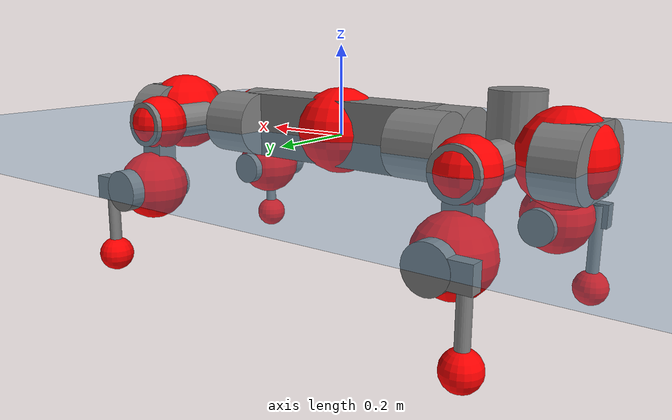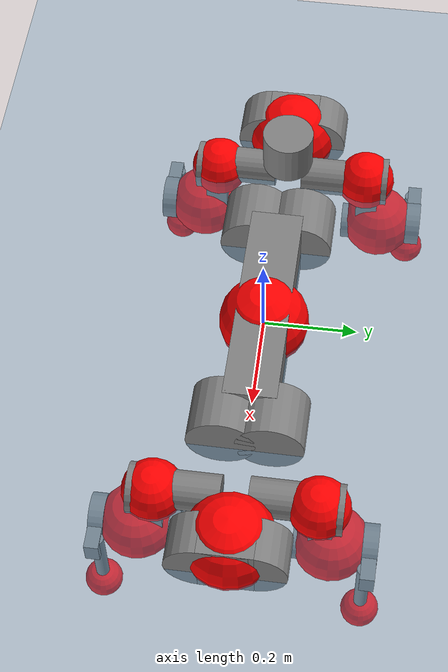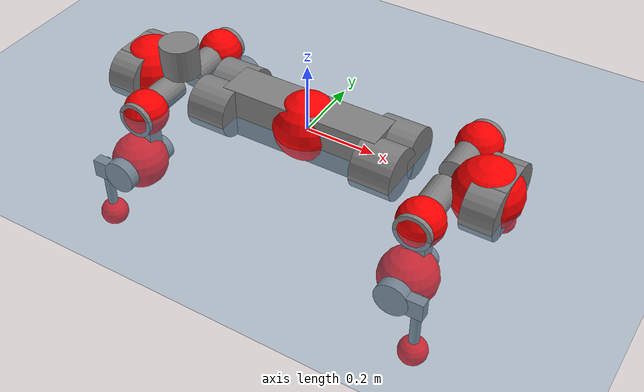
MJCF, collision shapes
<mujoco model="anymal_c">
  <compiler angle="radian" assetdir="assets" balanceinertia="true" inertiafromgeom="false"/>

  <option timestep="0.005" density="1.2" viscosity="2e-05"/>

  <size nkey="1"/>

  <visual>
    <quality shadowsize="8192"/>
    <map shadowclip="0.5"/>
  </visual>

  <default>
    <default class="/">
      <material specular="0" shininess="0.25"/>
      <geom contype="0" conaffinity="0" group="1" solref="-1000 -80"/>
      <site size="0.01 0.005 0.005" group="5"/>
      <general forcelimited="true" forcerange="-80 80" biastype="affine" gainprm="80" biasprm="0 -80 -2"/>
      <default class="anymal_c">
        <joint armature="0.01" damping="0.01" frictionloss="0.1"/>
        <default class="visual">
          <geom type="mesh" group="2"/>
          <default class="visual_zflip"/>
        </default>
        <default class="collision">
          <geom type="cylinder" group="3"/>
          <default class="foot">
            <geom size="0.03 0 0" type="sphere" condim="6" priority="1" friction="0.8 0.02 0.01" solimp="0.015 1 0.03"/>
          </default>
        </default>
      </default>
      <default class="reward_collision_sphere">
        <geom group="5" rgba="1 0 0 1"/>
      </default>
    </default>
  </default>

  <asset>
    <texture type="skybox" colorspace="auto" name="//unnamed_texture_0" builtin="gradient" rgb1="0.95 0.95 0.95" rgb2="0.95 0.95 0.95" width="100" height="600"/>
    <texture type="2d" colorspace="auto" name="texplane" builtin="checker" rgb1="0.345 0.575 0.748" rgb2="0.345 0.575 0.748" markrgb="1 1 1" width="512" height="512"/>
    <texture type="2d" colorspace="linear" name="base" file="base.png"/>
    <texture type="2d" colorspace="linear" name="top_shell" file="top_shell.png"/>
    <texture type="2d" colorspace="linear" name="bottom_shell" file="bottom_shell.png"/>
    <texture type="2d" colorspace="linear" name="remote" file="remote.png"/>
    <texture type="2d" colorspace="linear" name="hatch" file="hatch.png"/>
    <texture type="2d" colorspace="linear" name="handle" file="handle.png"/>
    <texture type="2d" colorspace="linear" name="face" file="face.png"/>
    <texture type="2d" colorspace="linear" name="battery" file="battery.png"/>
    <texture type="2d" colorspace="linear" name="lidar_cage" file="lidar_cage.png"/>
    <texture type="2d" colorspace="linear" name="depth_camera" file="depth_camera.png"/>
    <texture type="2d" colorspace="linear" name="wide_angle_camera" file="wide_angle_camera.png"/>
    <texture type="2d" colorspace="linear" name="lidar" file="lidar.png"/>
    <texture type="2d" colorspace="linear" name="drive" file="drive.png"/>
    <texture type="2d" colorspace="linear" name="hip_l" file="hip_l.png"/>
    <texture type="2d" colorspace="linear" name="shank_l" file="shank_l.png"/>
    <texture type="2d" colorspace="linear" name="foot" file="foot.png"/>
    <texture type="2d" colorspace="linear" name="thigh" file="thigh.png"/>
    <texture type="2d" colorspace="linear" name="shank_r" file="shank_r.png"/>
    <texture type="2d" colorspace="linear" name="hip_r" file="hip_r.png"/>
    <material name="MatPlane" class="/" texture="texplane" texuniform="true" texrepeat="2 2" specular="0.9" shininess="0.5"/>
    <material name="black_plastic" class="/" rgba="0.007 0.007 0.007 1"/>
    <material name="green" class="/" rgba="0.052 0.178 0.033 1"/>
    <material name="red" class="/" rgba="0.178 0.006 0.005 1"/>
    <material name="yellow" class="/" rgba="0.178 0.119 0.006 1"/>
    <material name="lwl" class="/" rgba="0.8 0.8 0.8 1"/>
    <material name="base" class="/" texture="base"/>
    <material name="top_shell" class="/" texture="top_shell"/>
    <material name="bottom_shell" class="/" texture="bottom_shell"/>
    <material name="hip_l" class="/" texture="hip_l"/>
    <material name="thigh" class="/" texture="thigh"/>
    <material name="shank_l" class="/" texture="shank_l"/>
    <material name="foot" class="/" texture="foot"/>
    <material name="hip_r" class="/" texture="hip_r"/>
    <material name="shank" class="/" texture="shank_r"/>
    <material name="hatch" class="/" texture="hatch"/>
    <material name="remote" class="/" texture="remote"/>
    <material name="handle" class="/" texture="handle"/>
    <material name="face" class="/" texture="face"/>
    <material name="depth_camera" class="/" texture="depth_camera"/>
    <material name="wide_angle_camera" class="/" texture="wide_angle_camera"/>
    <material name="battery" class="/" texture="battery"/>
    <material name="lidar_cage" class="/" texture="lidar_cage"/>
    <material name="lidar" class="/" texture="lidar"/>
    <material name="drive" class="/" texture="drive"/>
    <mesh name="base_0" class="/" file="base_0.obj"/>
    <mesh name="base_1" class="/" file="base_1.obj"/>
    <mesh name="base_2" class="/" file="base_2.obj"/>
    <mesh name="base_3" class="/" file="base_3.obj"/>
    <mesh name="base_4" class="/" file="base_4.obj"/>
    <mesh name="base_5" class="/" file="base_5.obj"/>
    <mesh name="top_shell" class="/" file="top_shell.obj"/>
    <mesh name="bottom_shell" class="/" file="bottom_shell.obj"/>
    <mesh name="remote" class="/" file="remote.obj"/>
    <mesh name="handle" class="/" file="handle.obj"/>
    <mesh name="face" class="/" file="face.obj"/>
    <mesh name="wide_angle_camera" class="/" file="wide_angle_camera.obj"/>
    <mesh name="depth_camera" class="/" file="depth_camera.obj"/>
    <mesh name="battery" class="/" file="battery.obj"/>
    <mesh name="lidar_cage" class="/" file="lidar_cage.obj"/>
    <mesh name="lidar" class="/" file="lidar.obj"/>
    <mesh name="drive" class="/" file="drive.obj"/>
    <mesh name="hip_l" class="/" file="hip_l.obj"/>
    <mesh name="thigh" class="/" file="thigh.obj"/>
    <mesh name="shank_l" class="/" file="shank_l.obj"/>
    <mesh name="foot" class="/" file="foot.obj"/>
    <mesh name="hip_r" class="/" file="hip_r.obj"/>
    <mesh name="hatch" class="/" file="hatch.obj"/>
    <mesh name="shank_r" class="/" file="shank_r.obj"/>
  </asset>

  <worldbody>
    <geom name="floor" class="/" size="100 100 0.125" type="plane" group="0" material="MatPlane"/>
    <light name="toplight_shadow" class="/" pos="0 0 5" dir="0.0990148 0.0990148 -0.990148" type="directional" ambient="0.04 0.04 0.04" diffuse="0.55 0.55 0.55" specular="0.12 0.12 0.12"/>
    <light name="toplight_fill" class="/" pos="0 0 5" dir="0.0990148 0.0990148 -0.990148" type="directional" castshadow="false" ambient="0.04 0.04 0.04" diffuse="0.3 0.3 0.3" specular="0.08 0.08 0.08"/>
    <body name="trunk" childclass="anymal_c" pos="0.000202839 0.00142017 0.0117328" quat="0.999986 0.000744377 -0.00396311 -0.00353049">
      <inertial pos="0.00352211 -0.00892548 0.0251555" quat="0.476924 0.542134 0.497188 0.481081" mass="9.22519" diaginertia="1.1252 0.100276 0.00826053"/>
      <joint name="//unnamed_joint_0" type="free" armature="0" damping="0" frictionloss="0"/>
      <geom name="//unnamed_geom_1" class="visual" material="green" mesh="base_0"/>
      <geom name="//unnamed_geom_2" class="visual" material="yellow" mesh="base_1"/>
      <geom name="//unnamed_geom_3" class="visual" material="red" mesh="base_2"/>
      <geom name="//unnamed_geom_4" class="visual" material="black_plastic" mesh="base_3"/>
      <geom name="//unnamed_geom_5" class="visual" material="lwl" mesh="base_4"/>
      <geom name="//unnamed_geom_6" class="visual" material="base" mesh="base_5"/>
      <geom name="trunk_1" class="collision" size="0.233074 0.0562591 0.0723332" type="box"/>
      <geom name="trunk_2" class="collision" size="0.0723332 0.0582684" pos="0.252133 0.0501147 0" quat="0.707107 0 0.707107 0"/>
      <geom name="trunk_3" class="collision" size="0.0723332 0.0582684" pos="-0.252133 0.0501147 0" quat="0.707107 0 0.707107 0"/>
      <geom name="trunk_4" class="collision" size="0.0723332 0.0582684" pos="0.252133 -0.0501147 0" quat="0.707107 0 0.707107 0"/>
      <geom name="trunk_5" class="collision" size="0.0723332 0.0582684" pos="-0.252133 -0.0501147 0" quat="0.707107 0 0.707107 0"/>
      <geom name="//unnamed_geom_12" class="visual" material="top_shell" mesh="top_shell"/>
      <geom name="//unnamed_geom_13" class="visual" material="bottom_shell" mesh="bottom_shell"/>
      <geom name="//unnamed_geom_14" class="visual" material="remote" mesh="remote"/>
      <geom name="//unnamed_geom_15" class="visual" material="handle" mesh="handle"/>
      <geom name="//unnamed_geom_16" class="visual" pos="0.480501 0 0" quat="1 0 0 0" material="face" mesh="face"/>
      <geom name="trunk_6" class="collision" size="0.0442036 0.0562591 0.0723332" pos="0.544259 0 0" type="box"/>
      <geom name="//unnamed_geom_18" class="collision" size="0.0723332 0.0442036" pos="0.544259 0.0501147 0" quat="0.707107 0 0.707107 0"/>
      <geom name="//unnamed_geom_19" class="collision" size="0.0723332 0.0442036" pos="0.544259 -0.0501147 0" quat="0.707107 0 0.707107 0"/>
      <geom name="//unnamed_geom_20" class="visual" pos="0.535133 0 -0.0109128" quat="0.965926 0 0.258819 0" material="depth_camera" mesh="depth_camera"/>
      <geom name="//unnamed_geom_21" class="visual" pos="0.594685 0 0.00802319" material="wide_angle_camera" mesh="wide_angle_camera"/>
      <geom name="//unnamed_geom_22" class="visual_zflip" pos="-0.480501 0 0" quat="0 0 0 1" material="face" mesh="face"/>
      <geom name="trunk_7" class="collision" size="0.0442036 0.0562591 0.0723332" pos="-0.544259 0 0" quat="0 0 0 1" type="box"/>
      <geom name="//unnamed_geom_24" class="collision" size="0.0723332 0.0442036" pos="-0.544259 -0.0501147 0" quat="0 -0.707107 0 0.707107"/>
      <geom name="//unnamed_geom_25" class="collision" size="0.0723332 0.0442036" pos="-0.544259 0.0501147 0" quat="0 -0.707107 0 0.707107"/>
      <geom name="//unnamed_geom_26" class="visual" pos="-0.535133 0 -0.0109128" quat="0 -0.258819 0 0.965926" material="depth_camera" mesh="depth_camera"/>
      <geom name="//unnamed_geom_27" class="visual_zflip" pos="-0.594685 0 0.00802319" quat="0 0 0 1" material="wide_angle_camera" mesh="wide_angle_camera"/>
      <geom name="//unnamed_geom_28" class="visual" material="battery" mesh="battery"/>
      <geom name="//unnamed_geom_29" class="visual" pos="0 0.0488966 0.0203063" quat="0.683013 -0.183013 0.183013 0.683013" material="depth_camera" mesh="depth_camera"/>
      <geom name="//unnamed_geom_30" class="visual" pos="0 -0.0488966 0.0203063" quat="0.683013 0.183013 0.183013 -0.683013" material="depth_camera" mesh="depth_camera"/>
      <geom name="//unnamed_geom_31" class="visual" pos="-0.42196 0 0.0393924" quat="1 0 0 0" material="lidar_cage" mesh="lidar_cage"/>
      <geom name="trunk_8" class="collision" size="0.0562591 0.0482221" pos="-0.42196 0 0.0715495"/>
      <geom name="//unnamed_geom_33" class="visual" pos="-0.42196 -0.000174163 0.0762122" quat="0.707107 0 0 -0.707107" material="lidar" mesh="lidar"/>
      <geom name="//unnamed_geom_34" class="visual" pos="0.347653 0.0743921 3.10455e-09" quat="0.258819 0.965926 0 0" material="drive" mesh="drive"/>
      <geom name="//unnamed_geom_35" class="visual" pos="0.347653 -0.0743921 -3.10455e-09" quat="0.258819 -0.965926 0 0" material="drive" mesh="drive"/>
      <geom name="//unnamed_geom_36" class="visual" pos="-0.347653 0.0743921 -3.10455e-09" quat="0 0 0.965926 -0.258819" material="drive" mesh="drive"/>
      <geom name="//unnamed_geom_37" class="visual" pos="-0.347653 -0.0743921 3.10455e-09" quat="0 0 -0.965926 -0.258819" material="drive" mesh="drive"/>
      <geom name="//unnamed_geom_38" class="visual" pos="0.134471 0 0.0391244" quat="1 0 0 0" material="hatch" mesh="hatch"/>
      <geom name="//unnamed_geom_39" class="reward_collision_sphere" size="0.0964442"/>
      <geom name="//unnamed_geom_40" class="reward_collision_sphere" size="0.0964442" pos="0.521654 0 0"/>
      <geom name="//unnamed_geom_41" class="reward_collision_sphere" size="0.0964442" pos="-0.521654 0 0"/>
      <site name="imu" pos="0.284563 -0.0232733 0.0664273" size="0.00803702"/>
      <camera name="track" pos="0 -1.43185 0" quat="0.707107 0.707107 0 0" mode="trackcom"/>
      <camera name="ego_camera" pos="0.521654 0 -0.021438" quat="-0.5 -0.5 0.5 0.5"/>
      <body name="LF_HIP" pos="0.347738 0.0717159 -0.00415514" quat="0.258402 0.966037 -7.85065e-05 -8.26415e-05">
        <inertial pos="0.0758701 -0.00885986 0.00683793" quat="-0.0876026 0.68404 -0.138976 0.710705" mass="1.54047" diaginertia="0.0118659 0.00101753 0.000156812"/>
        <joint name="LF_HAA" pos="0 0 0" axis="0.998862 -0.0238413 -0.0413037" stiffness="0.037423" range="-0.753937 0.384361" armature="0.00780138" damping="0.0459537" frictionloss="0.059468"/>
        <geom name="//unnamed_geom_42" class="visual" pos="0 0.000182627 -2.99963e-05" quat="0.258819 -0.965926 0 0" material="hip_l" mesh="hip_l"/>
        <geom name="//unnamed_geom_43" class="visual" pos="0.0694379 -0.0782381 -0.0438396" quat="0.183013 -0.683013 0.683013 0.183013" material="drive" mesh="drive"/>
        <geom name="//unnamed_geom_44" class="collision" size="0.0401851 0.0562591" pos="0.0694379 -0.00856231 -0.00370074" quat="-0.353553 -0.612372 0.612372 -0.353553"/>
        <body name="LF_THIGH" pos="0.0780999 -0.0567453 -0.0320027" quat="0.182136 -0.682955 0.683277 0.183119">
          <inertial pos="0.0366259 0.00194085 -0.132801" quat="0.991847 -0.00584464 -0.0930122 0.086914" mass="1.75555" diaginertia="0.0700718 0.00628706 0.000229826"/>
          <joint name="LF_HFE" pos="0 0 0" axis="0.999994 -0.00262687 0.00204506" stiffness="0.0182399" range="-3.03065 3.14474" armature="0.0107132" damping="0" frictionloss="0.0804609"/>
          <geom name="//unnamed_geom_45" class="visual" pos="0.00882007 1.38984e-05 0" quat="0.707107 0 0 -0.707107" material="thigh" mesh="thigh"/>
          <geom name="//unnamed_geom_46" class="collision" size="0.0522406 0.0321481" pos="0.0463692 0 0" quat="0.5 0.5 -0.5 -0.5"/>
          <geom name="//unnamed_geom_47" class="collision" size="0.0301388 0.0241111 0.113574" pos="0.0347769 0 -0.0757374" quat="0.707107 0 0 -0.707107" type="box"/>
          <geom name="//unnamed_geom_48" class="visual" pos="0.116271 0 -0.152746" quat="1 0 0 0" material="drive" mesh="drive"/>
          <geom name="//unnamed_geom_49" class="collision" size="0.0401851 0.0562591" pos="0.0351247 0 -0.152746" quat="0.707107 0 0.707107 0"/>
          <geom name="//unnamed_geom_50" class="reward_collision_sphere" size="0.0642961" pos="0.0289808 0 0"/>
          <body name="LF_SHANK" pos="0.114651 0.00033745 -0.149023" quat="1 0.000181067 -0.000390955 -0.000153924">
            <inertial pos="0.0192206 -0.0327964 -0.0422825" quat="0.992366 -0.121276 0.00138693 -0.0223751" mass="0.305648" diaginertia="0.0236155 0.00171882 4.76971e-05"/>
            <joint name="LF_KFE" pos="0 0 0" axis="0.999999 -0.00100828 0.000346005" range="-2.8874 3.02312" armature="0.00912702" damping="0.0153085" frictionloss="0.0316317"/>
            <geom name="//unnamed_geom_51" class="visual" pos="0.00287603 0.0153351 0" quat="0.707107 0 0 -0.707107" material="shank_l" mesh="shank_l"/>
            <geom name="LF_kfe_act" class="collision" size="0.0482221 0.016074" pos="0.0231846 0 0" quat="0.5 0.5 -0.5 -0.5"/>
            <geom name="//unnamed_geom_53" class="collision" size="0.0462121 0.0271249 0.0152703" pos="0.0231846 -0.0411649 0" quat="0.5 0.5 -0.5 -0.5" type="box"/>
            <geom name="//unnamed_geom_54" class="visual" pos="0.0151273 -0.0580236 -0.181135" quat="0.382683 0 0 -0.92388" material="foot" mesh="foot"/>
            <geom name="LF_calf" class="collision" size="0.0140648 0.113524" pos="0.015128 -0.0629655 -0.0905677" quat="0.707107 0 0 -0.707107"/>
            <geom name="LF_foot" class="foot" size="0.0303312" pos="0.015128 -0.0629655 -0.169076" quat="0.707107 0 0 -0.707107"/>
            <geom name="//unnamed_geom_57" class="reward_collision_sphere" size="0.0803702" pos="-0.0579615 0 0"/>
            <geom name="//unnamed_geom_58" class="reward_collision_sphere" size="0.0401851" pos="0.015128 -0.0629655 -0.169076"/>
            <site name="LF_foot" class="foot" pos="0.015128 -0.0629655 -0.169076" quat="0.707107 0 0 -0.707107" size="0.00803702"/>
          </body>
        </body>
      </body>
      <body name="RF_HIP" pos="0.35324 -0.078227 -0.00200353" quat="0.254393 -0.967093 -0.00206594 0.00338653">
        <inertial pos="0.0693348 0.0119998 -0.00626421" quat="0.105993 0.712331 0.0949696 0.687263" mass="1.26558" diaginertia="0.0125529 0.000934679 0.000149956"/>
        <joint name="RF_HAA" pos="0 0 0" axis="0.999635 -0.0213089 0.0165966" stiffness="0.0445725" range="-0.257852 0.824676" armature="0.00744708" damping="0.0404014" frictionloss="0.0538061"/>
        <geom name="//unnamed_geom_59" class="visual" pos="0 -0.000182625 -2.99962e-05" quat="0.258819 0.965926 0 0" material="hip_r" mesh="hip_r"/>
        <geom name="//unnamed_geom_60" class="visual" pos="0.0694379 0.0782381 -0.0438396" quat="0.183013 0.683013 0.683013 -0.183013" material="drive" mesh="drive"/>
        <geom name="//unnamed_geom_61" class="collision" size="0.0401851 0.0562591" pos="0.0694379 0.00856231 -0.00370074" quat="-0.353553 0.612372 0.612372 0.353553"/>
        <body name="RF_THIGH" pos="0.0713433 0.0578648 -0.023393" quat="0.183137 0.684461 0.681513 -0.183068">
          <inertial pos="0.0403485 0.00128195 -0.128953" quat="0.992895 0.00360397 -0.0839411 0.0842621" mass="1.42431" diaginertia="0.0641337 0.00620282 0.0001746"/>
          <joint name="RF_HFE" pos="0 0 0" axis="0.99999 0.00401486 -0.00219953" range="-3.1309 3.25397" armature="0.00991573" damping="0.0679113" frictionloss="0.11435"/>
          <geom name="//unnamed_geom_62" class="visual" pos="0.00882007 1.38984e-05 0" quat="0.707107 0 0 -0.707107" material="thigh" mesh="thigh"/>
          <geom name="//unnamed_geom_63" class="collision" size="0.0522406 0.0321481" pos="0.0463692 0 0" quat="0.5 0.5 0.5 0.5"/>
          <geom name="//unnamed_geom_64" class="collision" size="0.0301388 0.0241111 0.113574" pos="0.0347769 0 -0.0757374" quat="0.707107 0 0 0.707107" type="box"/>
          <geom name="//unnamed_geom_65" class="visual" pos="0.116271 0 -0.152746" quat="1 0 0 0" material="drive" mesh="drive"/>
          <geom name="//unnamed_geom_66" class="collision" size="0.0401851 0.0562591" pos="0.0351247 0 -0.152746" quat="0.707107 0 0.707107 0"/>
          <geom name="//unnamed_geom_67" class="reward_collision_sphere" size="0.0642961" pos="0.0289808 0 0"/>
          <body name="RF_SHANK" pos="0.127758 -0.00162392 -0.150782" quat="1 -0.000396526 -0.000340172 -0.000141993">
            <inertial pos="0.00813718 0.0542431 -0.0517258" quat="0.993696 0.0926506 -0.0587172 0.0231744" mass="0.346864" diaginertia="0.0237265 0.00172617 6.05093e-05"/>
            <joint name="RF_KFE" pos="0 0 0" axis="0.999971 -0.00752685 -0.000642048" stiffness="0.00422793" range="-3.14503 3.1351" armature="0.00790771" damping="0.0422643" frictionloss="0.0994734"/>
            <geom name="//unnamed_geom_68" class="visual" pos="0.00287601 -0.0153351 0" quat="0.707107 0 0 0.707107" material="shank" mesh="shank_r"/>
            <geom name="RF_kfe_act" class="collision" size="0.0482221 0.016074" pos="0.0231846 0 0" quat="0.5 0.5 0.5 0.5"/>
            <geom name="//unnamed_geom_70" class="collision" size="0.0462121 0.0271249 0.0152703" pos="0.0231846 0.0411649 0" quat="0.5 0.5 0.5 0.5" type="box"/>
            <geom name="//unnamed_geom_71" class="visual" pos="0.0151287 0.0580236 -0.181135" quat="0.382683 0 0 0.92388" material="foot" mesh="foot"/>
            <geom name="RF_calf" class="collision" size="0.0140648 0.113524" pos="0.015128 0.0629655 -0.0905677" quat="0.707107 0 0 0.707107"/>
            <geom name="RF_foot" class="foot" size="0.0332288" pos="0.015128 0.0629655 -0.169076" quat="0.707107 0 0 0.707107"/>
            <geom name="//unnamed_geom_74" class="reward_collision_sphere" size="0.0803702" pos="-0.0579615 0 0"/>
            <geom name="//unnamed_geom_75" class="reward_collision_sphere" size="0.0401851" pos="0.015128 0.0629655 -0.169076"/>
            <site name="RF_foot" class="foot" pos="0.015128 0.0629655 -0.169076" quat="0.707107 0 0 0.707107" size="0.00803702"/>
          </body>
        </body>
      </body>
      <body name="LH_HIP" pos="-0.347864 0.0815054 -0.00734459" quat="0.000752149 -5.09866e-05 0.966178 -0.257873">
        <inertial pos="0.0682367 0.0211387 0.00735914" quat="0.127094 0.687836 0.137624 0.701277" mass="1.5391" diaginertia="0.0139219 0.00094725 0.000172013"/>
        <joint name="LH_HAA" pos="0 0 0" axis="0.998865 -0.0443403 -0.0174073" range="-0.297108 0.510358" armature="0.00419601" damping="0.0246544" frictionloss="0.0763049"/>
        <geom name="//unnamed_geom_76" class="visual" pos="0 -0.000182625 -2.99962e-05" quat="-0.258819 -0.965926 0 0" material="hip_r" mesh="hip_r"/>
        <geom name="//unnamed_geom_77" class="visual" pos="0.0694379 0.0782381 -0.0438396" quat="0.183013 0.683013 0.683013 -0.183013" material="drive" mesh="drive"/>
        <geom name="//unnamed_geom_78" class="collision" size="0.0401851 0.0562591" pos="0.0694379 0.00856231 -0.00370074" quat="-0.353553 0.612372 0.612372 0.353553"/>
        <body name="LH_THIGH" pos="0.0693755 0.0614367 -0.0339361" quat="0.18549 0.683715 0.681084 -0.185073">
          <inertial pos="0.0232262 0.00769709 -0.119338" quat="0.992753 -0.00506116 -0.0807191 0.0888858" mass="1.31371" diaginertia="0.0459249 0.00470644 0.000141225"/>
          <joint name="LH_HFE" pos="0 0 0" axis="0.998093 0.019562 0.0585508" range="-3.00926 3.1636" armature="0.00803103" damping="0.0686496" frictionloss="0.0631012"/>
          <geom name="//unnamed_geom_79" class="visual" pos="0.00882007 1.38984e-05 0" quat="0.707107 0 0 -0.707107" material="thigh" mesh="thigh"/>
          <geom name="//unnamed_geom_80" class="collision" size="0.0522406 0.0321481" pos="0.0463692 0 0" quat="0.5 0.5 -0.5 -0.5"/>
          <geom name="//unnamed_geom_81" class="collision" size="0.0301388 0.0241111 0.113574" pos="0.0347769 0 -0.0757374" quat="0.707107 0 0 -0.707107" type="box"/>
          <geom name="//unnamed_geom_82" class="visual" pos="0.116271 0 -0.152746" quat="1 0 0 0" material="drive" mesh="drive"/>
          <geom name="//unnamed_geom_83" class="collision" size="0.0401851 0.0562591" pos="0.0351247 0 -0.152746" quat="0.707107 0 0.707107 0"/>
          <geom name="//unnamed_geom_84" class="reward_collision_sphere" size="0.0642961" pos="0.0289808 0 0"/>
          <body name="LH_SHANK" pos="0.122303 0.00184862 -0.146312" quat="0.999991 0.00101816 0.00173526 0.00366578">
            <inertial pos="0.0177121 0.0366499 -0.03124" quat="0.991975 0.117605 -0.0463962 0.00147704" mass="0.339238" diaginertia="0.0234561 0.00201824 5.1399e-05"/>
            <joint name="LH_KFE" pos="0 0 0" axis="0.999995 -0.00111536 -0.0029152" stiffness="0.00123483" range="-3.15028 3.39692" armature="0.00404584" damping="0.0643893" frictionloss="0.0759855"/>
            <geom name="//unnamed_geom_85" class="visual" pos="0.00287601 -0.0153351 0" quat="-0.707107 0 0 -0.707107" material="shank" mesh="shank_r"/>
            <geom name="LH_kfe_act" class="collision" size="0.0482221 0.016074" pos="0.0231846 0 0" quat="0.5 0.5 -0.5 -0.5"/>
            <geom name="//unnamed_geom_87" class="collision" size="0.0462121 0.0271249 0.0152703" pos="0.0231846 0.0411649 0" quat="0.5 0.5 -0.5 -0.5" type="box"/>
            <geom name="//unnamed_geom_88" class="visual" pos="0.0151287 0.0580236 -0.181135" quat="-0.382683 0 0 -0.92388" material="foot" mesh="foot"/>
            <geom name="LH_calf" class="collision" size="0.0140648 0.113524" pos="0.015128 0.0629655 -0.0905677" quat="0.707107 0 0 -0.707107"/>
            <geom name="LH_foot" class="foot" size="0.0210265" pos="0.015128 0.0629655 -0.169076" quat="0.707107 0 0 -0.707107"/>
            <geom name="//unnamed_geom_91" class="reward_collision_sphere" size="0.0803702" pos="-0.0579615 0 0"/>
            <geom name="//unnamed_geom_92" class="reward_collision_sphere" size="0.0401851" pos="0.015128 0.0629655 -0.169076"/>
            <site name="LH_foot" class="foot" pos="0.015128 0.0629655 -0.169076" quat="0.707107 0 0 -0.707107" size="0.00803702"/>
          </body>
        </body>
      </body>
      <body name="RH_HIP" pos="-0.360345 -0.0733417 -0.0101566" quat="-0.000199434 -0.00141876 -0.966034 -0.258412">
        <inertial pos="0.0743944 -0.00489977 -0.00539157" quat="-0.148038 0.704095 -0.0882925 0.688868" mass="1.43145" diaginertia="0.00902082 0.000804987 0.000116035"/>
        <joint name="RH_HAA" pos="0 0 0" axis="0.997946 0.0213737 -0.0603833" stiffness="0.00380268" range="-0.631697 0.48955" armature="0.00772764" damping="0.0205993" frictionloss="0.0297404"/>
        <geom name="//unnamed_geom_93" class="visual" pos="0 0.000182627 -2.99963e-05" quat="-0.258819 0.965926 0 0" material="hip_l" mesh="hip_l"/>
        <geom name="//unnamed_geom_94" class="visual" pos="0.0694379 -0.0782381 -0.0438396" quat="-0.183013 0.683013 -0.683013 -0.183013" material="drive" mesh="drive"/>
        <geom name="//unnamed_geom_95" class="collision" size="0.0401851 0.0562591" pos="0.0694379 -0.00856231 -0.00370074" quat="0.353553 0.612372 -0.612372 0.353553"/>
        <body name="RH_THIGH" pos="0.0692096 -0.0544567 -0.016468" quat="-0.183006 0.682993 -0.682981 -0.183212">
          <inertial pos="0.03182 0.00526119 -0.12165" quat="0.991316 0.0147084 -0.070772 0.109856" mass="1.89632" diaginertia="0.0575373 0.00568045 0.000187403"/>
          <joint name="RH_HFE" pos="0 0 0" axis="0.999791 -0.0027961 0.0202481" range="-3.10317 3.30481" armature="0.00891992" damping="0.0194215" frictionloss="0.0877244"/>
          <geom name="//unnamed_geom_96" class="visual" pos="0.00882007 1.38984e-05 0" quat="0.707107 0 0 -0.707107" material="thigh" mesh="thigh"/>
          <geom name="//unnamed_geom_97" class="collision" size="0.0522406 0.0321481" pos="0.0463692 0 0" quat="0.5 0.5 0.5 0.5"/>
          <geom name="//unnamed_geom_98" class="collision" size="0.0301388 0.0241111 0.113574" pos="0.0347769 0 -0.0757374" quat="0.707107 0 0 0.707107" type="box"/>
          <geom name="//unnamed_geom_99" class="visual" pos="0.116271 0 -0.152746" quat="1 0 0 0" material="drive" mesh="drive"/>
          <geom name="//unnamed_geom_100" class="collision" size="0.0401851 0.0562591" pos="0.0351247 0 -0.152746" quat="0.707107 0 0.707107 0"/>
          <geom name="//unnamed_geom_101" class="reward_collision_sphere" size="0.0642961" pos="0.0289808 0 0"/>
          <body name="RH_SHANK" pos="0.127098 -0.0080638 -0.145055" quat="0.999979 0.00594822 -0.00160838 0.00188693">
            <inertial pos="0.00373149 -0.0428052 -0.0432991" quat="0.990411 -0.122519 -0.0511209 -0.0382299" mass="0.28498" diaginertia="0.0197321 0.00150031 5.18637e-05"/>
            <joint name="RH_KFE" pos="0 0 0" axis="0.998145 -0.0585825 0.0165905" stiffness="0.0536308" range="-3.33195 3.17363" armature="0.00866024" damping="0.0571684" frictionloss="0.0882834"/>
            <geom name="//unnamed_geom_102" class="visual" pos="0.00287603 0.0153351 0" quat="0.707107 0 0 -0.707107" material="shank_l" mesh="shank_l"/>
            <geom name="RH_kfe_act" class="collision" size="0.0482221 0.016074" pos="0.0231846 0 0" quat="0.5 0.5 0.5 0.5"/>
            <geom name="//unnamed_geom_104" class="collision" size="0.0462121 0.0271249 0.0152703" pos="0.0231846 -0.0411649 0" quat="0.5 0.5 0.5 0.5" type="box"/>
            <geom name="//unnamed_geom_105" class="visual" pos="0.0151273 -0.0580236 -0.181135" quat="0.382683 0 0 -0.92388" material="foot" mesh="foot"/>
            <geom name="RH_calf" class="collision" size="0.0140648 0.113524" pos="0.015128 -0.0629655 -0.0905677" quat="0.707107 0 0 0.707107"/>
            <geom name="RH_foot" class="foot" size="0.0257635" pos="0.015128 -0.0629655 -0.169076" quat="0.707107 0 0 0.707107"/>
            <geom name="//unnamed_geom_108" class="reward_collision_sphere" size="0.0803702" pos="-0.0579615 0 0"/>
            <geom name="//unnamed_geom_109" class="reward_collision_sphere" size="0.0401851" pos="0.015128 -0.0629655 -0.169076"/>
            <site name="RH_foot" class="foot" pos="0.015128 -0.0629655 -0.169076" quat="0.707107 0 0 0.707107" size="0.00803702"/>
          </body>
        </body>
      </body>
    </body>
  </worldbody>

  <contact>
    <pair class="/" geom1="floor" geom2="LF_foot" name="//unnamed_contact_0"/>
    <pair class="/" geom1="floor" geom2="RF_foot" name="//unnamed_contact_1"/>
    <pair class="/" geom1="floor" geom2="LH_foot" name="//unnamed_contact_2"/>
    <pair class="/" geom1="floor" geom2="RH_foot" name="//unnamed_contact_3"/>
  </contact>

  <actuator>
    <general name="LF_HAA" class="/" joint="LF_HAA" forcerange="-61.6905 61.6905" gainprm="62.7423" biasprm="0 -62.7423 -1.93401"/>
    <general name="LF_HFE" class="/" joint="LF_HFE" forcerange="-62.9142 62.9142" gainprm="62.7423" biasprm="0 -62.7423 -1.93401"/>
    <general name="LF_KFE" class="/" joint="LF_KFE" forcerange="-50.6783 50.6783" gainprm="62.7423" biasprm="0 -62.7423 -1.93401"/>
    <general name="RF_HAA" class="/" joint="RF_HAA" forcerange="-65.2333 65.2333" gainprm="62.7423" biasprm="0 -62.7423 -1.93401"/>
    <general name="RF_HFE" class="/" joint="RF_HFE" forcerange="-51.4673 51.4673" gainprm="62.7423" biasprm="0 -62.7423 -1.93401"/>
    <general name="RF_KFE" class="/" joint="RF_KFE" forcerange="-60.4627 60.4627" gainprm="62.7423" biasprm="0 -62.7423 -1.93401"/>
    <general name="LH_HAA" class="/" joint="LH_HAA" forcerange="-61.9259 61.9259" gainprm="62.7423" biasprm="0 -62.7423 -1.93401"/>
    <general name="LH_HFE" class="/" joint="LH_HFE" forcerange="-92.257 92.257" gainprm="62.7423" biasprm="0 -62.7423 -1.93401"/>
    <general name="LH_KFE" class="/" joint="LH_KFE" forcerange="-39.7064 39.7064" gainprm="62.7423" biasprm="0 -62.7423 -1.93401"/>
    <general name="RH_HAA" class="/" joint="RH_HAA" forcerange="-65.7629 65.7629" gainprm="62.7423" biasprm="0 -62.7423 -1.93401"/>
    <general name="RH_HFE" class="/" joint="RH_HFE" forcerange="-71.6274 71.6274" gainprm="62.7423" biasprm="0 -62.7423 -1.93401"/>
    <general name="RH_KFE" class="/" joint="RH_KFE" forcerange="-49.6795 49.6795" gainprm="62.7423" biasprm="0 -62.7423 -1.93401"/>
  </actuator>

  <sensor>
    <gyro site="imu" name="imu_angular_velocity"/>
    <velocimeter site="imu" name="imu_linear_velocity"/>
    <framelinvel objtype="site" objname="LF_foot" name="LF_foot_global_linear_velocity"/>
    <framelinvel objtype="site" objname="RF_foot" name="RF_foot_global_linear_velocity"/>
    <framelinvel objtype="site" objname="LH_foot" name="LH_foot_global_linear_velocity"/>
    <framelinvel objtype="site" objname="RH_foot" name="RH_foot_global_linear_velocity"/>
  </sensor>

  <keyframe>
    <key name="home" qpos="0 0 0.55 1 0 0 0 0 0.4 -0.8 0 -0.4 0.8 0 -0.4 0.8 0 0.4 -0.8"/>
  </keyframe>
</mujoco>
